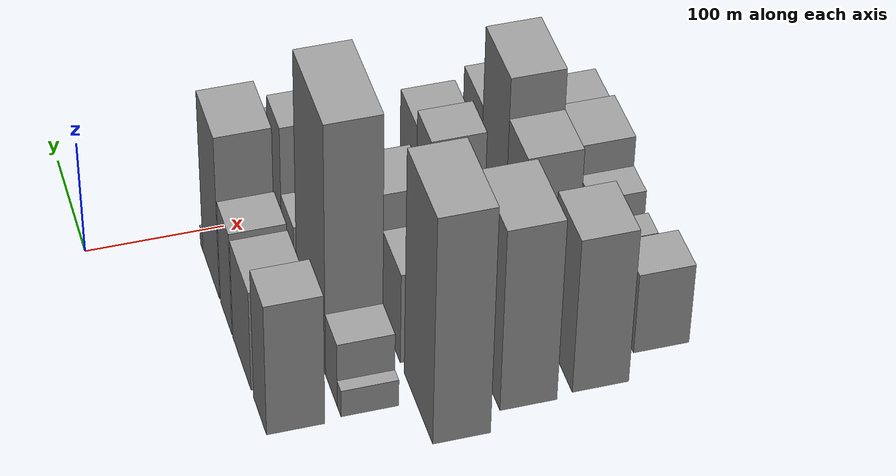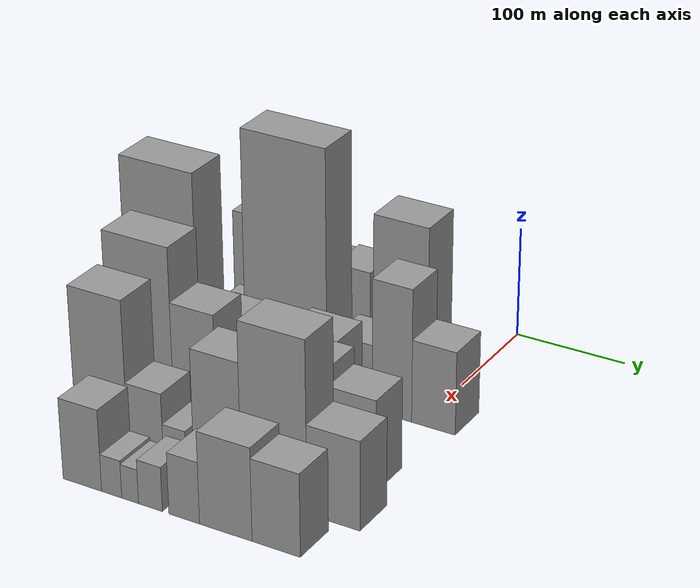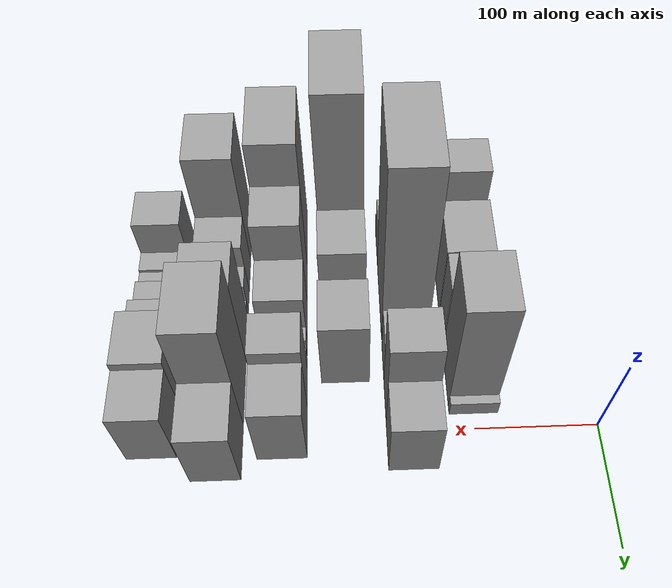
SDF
<sdf version="1.6">
 <world name="default">
  <model name="building_19">
   <static>1</static>
   <pose>100.0000 -189.8617 0 0.000000 0.000000 0.000000</pose>
   <link name="link">
    <pose>0 0 58.50 0 0 0</pose>
    <collision name="collision"><geometry><box><size>40.0000 35.9877 117.0000</size></box></geometry></collision>
    <visual name="visual">
     <cast_shadows>0</cast_shadows>
     <geometry><box><size>40.0000 35.9877 117.0000</size></box></geometry>
     <material>
      <script>
       <uri>model://grey_wall/materials/scripts</uri>
       <uri>model://grey_wall/materials/textures</uri>
       <name>vrc/grey_wall</name>
      </script>
     </material>
    </visual>
   </link>
  </model>
  <model name="building_20">
   <static>1</static>
   <pose>100.0000 -138.5964 0 0.000000 0.000000 0.000000</pose>
   <link name="link">
    <pose>0 0 45.00 0 0 0</pose>
    <collision name="collision"><geometry><box><size>40.0000 52.5428 90.0000</size></box></geometry></collision>
    <visual name="visual">
     <cast_shadows>0</cast_shadows>
     <geometry><box><size>40.0000 52.5428 90.0000</size></box></geometry>
     <material>
      <script>
       <uri>model://grey_wall/materials/scripts</uri>
       <uri>model://grey_wall/materials/textures</uri>
       <name>vrc/grey_wall</name>
      </script>
     </material>
    </visual>
   </link>
  </model>
  <model name="building_21">
   <static>1</static>
   <pose>100.0000 -92.4272 0 0.000000 0.000000 0.000000</pose>
   <link name="link">
    <pose>0 0 46.50 0 0 0</pose>
    <collision name="collision"><geometry><box><size>40.0000 33.7957 93.0000</size></box></geometry></collision>
    <visual name="visual">
     <cast_shadows>0</cast_shadows>
     <geometry><box><size>40.0000 33.7957 93.0000</size></box></geometry>
     <material>
      <script>
       <uri>model://grey_wall/materials/scripts</uri>
       <uri>model://grey_wall/materials/textures</uri>
       <name>vrc/grey_wall</name>
      </script>
     </material>
    </visual>
   </link>
  </model>
  <model name="building_22">
   <static>1</static>
   <pose>100.0000 -47.0953 0 0.000000 0.000000 0.000000</pose>
   <link name="link">
    <pose>0 0 73.50 0 0 0</pose>
    <collision name="collision"><geometry><box><size>40.0000 50.8680 147.0000</size></box></geometry></collision>
    <visual name="visual">
     <cast_shadows>0</cast_shadows>
     <geometry><box><size>40.0000 50.8680 147.0000</size></box></geometry>
     <material>
      <script>
       <uri>model://grey_wall/materials/scripts</uri>
       <uri>model://grey_wall/materials/textures</uri>
       <name>vrc/grey_wall</name>
      </script>
     </material>
    </visual>
   </link>
  </model>
  <model name="building_23">
   <static>1</static>
   <pose>100.0000 -17.7952 0 0.000000 0.000000 0.000000</pose>
   <link name="link">
    <pose>0 0 9.00 0 0 0</pose>
    <collision name="collision"><geometry><box><size>40.0000 7.7321 18.0000</size></box></geometry></collision>
    <visual name="visual">
     <cast_shadows>0</cast_shadows>
     <geometry><box><size>40.0000 7.7321 18.0000</size></box></geometry>
     <material>
      <script>
       <uri>model://grey_wall/materials/scripts</uri>
       <uri>model://grey_wall/materials/textures</uri>
       <name>vrc/grey_wall</name>
      </script>
     </material>
    </visual>
   </link>
  </model>
  <model name="building_62">
   <static>1</static>
   <pose>152.0000 -199.5590 0 0.000000 0.000000 0.000000</pose>
   <link name="link">
    <pose>0 0 12.00 0 0 0</pose>
    <collision name="collision"><geometry><box><size>40.0000 10.1499 24.0000</size></box></geometry></collision>
    <visual name="visual">
     <cast_shadows>0</cast_shadows>
     <geometry><box><size>40.0000 10.1499 24.0000</size></box></geometry>
     <material>
      <script>
       <uri>model://grey_wall/materials/scripts</uri>
       <uri>model://grey_wall/materials/textures</uri>
       <name>vrc/grey_wall</name>
      </script>
     </material>
    </visual>
   </link>
  </model>
  <model name="building_63">
   <static>1</static>
   <pose>152.0000 -179.2771 0 0.000000 0.000000 0.000000</pose>
   <link name="link">
    <pose>0 0 28.50 0 0 0</pose>
    <collision name="collision"><geometry><box><size>40.0000 30.4139 57.0000</size></box></geometry></collision>
    <visual name="visual">
     <cast_shadows>0</cast_shadows>
     <geometry><box><size>40.0000 30.4139 57.0000</size></box></geometry>
     <material>
      <script>
       <uri>model://grey_wall/materials/scripts</uri>
       <uri>model://grey_wall/materials/textures</uri>
       <name>vrc/grey_wall</name>
      </script>
     </material>
    </visual>
   </link>
  </model>
  <model name="building_64">
   <static>1</static>
   <pose>152.0000 -125.0504 0 0.000000 0.000000 0.000000</pose>
   <link name="link">
    <pose>0 0 111.00 0 0 0</pose>
    <collision name="collision"><geometry><box><size>40.0000 78.0395 222.0000</size></box></geometry></collision>
    <visual name="visual">
     <cast_shadows>0</cast_shadows>
     <geometry><box><size>40.0000 78.0395 222.0000</size></box></geometry>
     <material>
      <script>
       <uri>model://grey_wall/materials/scripts</uri>
       <uri>model://grey_wall/materials/textures</uri>
       <name>vrc/grey_wall</name>
      </script>
     </material>
    </visual>
   </link>
  </model>
  <model name="building_65">
   <static>1</static>
   <pose>152.0000 -61.3238 0 0.000000 0.000000 0.000000</pose>
   <link name="link">
    <pose>0 0 30.00 0 0 0</pose>
    <collision name="collision"><geometry><box><size>40.0000 35.4136 60.0000</size></box></geometry></collision>
    <visual name="visual">
     <cast_shadows>0</cast_shadows>
     <geometry><box><size>40.0000 35.4136 60.0000</size></box></geometry>
     <material>
      <script>
       <uri>model://grey_wall/materials/scripts</uri>
       <uri>model://grey_wall/materials/textures</uri>
       <name>vrc/grey_wall</name>
      </script>
     </material>
    </visual>
   </link>
  </model>
  <model name="building_66">
   <static>1</static>
   <pose>152.0000 -25.4433 0 0.000000 0.000000 0.000000</pose>
   <link name="link">
    <pose>0 0 60.00 0 0 0</pose>
    <collision name="collision"><geometry><box><size>40.0000 36.3476 120.0000</size></box></geometry></collision>
    <visual name="visual">
     <cast_shadows>0</cast_shadows>
     <geometry><box><size>40.0000 36.3476 120.0000</size></box></geometry>
     <material>
      <script>
       <uri>model://grey_wall/materials/scripts</uri>
       <uri>model://grey_wall/materials/textures</uri>
       <name>vrc/grey_wall</name>
      </script>
     </material>
    </visual>
   </link>
  </model>
  <model name="building_67">
   <static>1</static>
   <pose>152.0000 12.5162 0 0.000000 0.000000 0.000000</pose>
   <link name="link">
    <pose>0 0 37.50 0 0 0</pose>
    <collision name="collision"><geometry><box><size>40.0000 39.5713 75.0000</size></box></geometry></collision>
    <visual name="visual">
     <cast_shadows>0</cast_shadows>
     <geometry><box><size>40.0000 39.5713 75.0000</size></box></geometry>
     <material>
      <script>
       <uri>model://grey_wall/materials/scripts</uri>
       <uri>model://grey_wall/materials/textures</uri>
       <name>vrc/grey_wall</name>
      </script>
     </material>
    </visual>
   </link>
  </model>
  <model name="building_110">
   <static>1</static>
   <pose>204.0000 -210.2616 0 0.000000 0.000000 0.000000</pose>
   <link name="link">
    <pose>0 0 100.50 0 0 0</pose>
    <collision name="collision"><geometry><box><size>40.0000 69.0849 201.0000</size></box></geometry></collision>
    <visual name="visual">
     <cast_shadows>0</cast_shadows>
     <geometry><box><size>40.0000 69.0849 201.0000</size></box></geometry>
     <material>
      <script>
       <uri>model://grey_wall/materials/scripts</uri>
       <uri>model://grey_wall/materials/textures</uri>
       <name>vrc/grey_wall</name>
      </script>
     </material>
    </visual>
   </link>
  </model>
  <model name="building_111">
   <static>1</static>
   <pose>204.0000 -142.9102 0 0.000000 0.000000 0.000000</pose>
   <link name="link">
    <pose>0 0 40.50 0 0 0</pose>
    <collision name="collision"><geometry><box><size>40.0000 45.6178 81.0000</size></box></geometry></collision>
    <visual name="visual">
     <cast_shadows>0</cast_shadows>
     <geometry><box><size>40.0000 45.6178 81.0000</size></box></geometry>
     <material>
      <script>
       <uri>model://grey_wall/materials/scripts</uri>
       <uri>model://grey_wall/materials/textures</uri>
       <name>vrc/grey_wall</name>
      </script>
     </material>
    </visual>
   </link>
  </model>
  <model name="building_112">
   <static>1</static>
   <pose>204.0000 -109.4882 0 0.000000 0.000000 0.000000</pose>
   <link name="link">
    <pose>0 0 19.50 0 0 0</pose>
    <collision name="collision"><geometry><box><size>40.0000 21.2263 39.0000</size></box></geometry></collision>
    <visual name="visual">
     <cast_shadows>0</cast_shadows>
     <geometry><box><size>40.0000 21.2263 39.0000</size></box></geometry>
     <material>
      <script>
       <uri>model://grey_wall/materials/scripts</uri>
       <uri>model://grey_wall/materials/textures</uri>
       <name>vrc/grey_wall</name>
      </script>
     </material>
    </visual>
   </link>
  </model>
  <model name="building_113">
   <static>1</static>
   <pose>204.0000 -68.9966 0 0.000000 0.000000 0.000000</pose>
   <link name="link">
    <pose>0 0 43.50 0 0 0</pose>
    <collision name="collision"><geometry><box><size>40.0000 45.7568 87.0000</size></box></geometry></collision>
    <visual name="visual">
     <cast_shadows>0</cast_shadows>
     <geometry><box><size>40.0000 45.7568 87.0000</size></box></geometry>
     <material>
      <script>
       <uri>model://grey_wall/materials/scripts</uri>
       <uri>model://grey_wall/materials/textures</uri>
       <name>vrc/grey_wall</name>
      </script>
     </material>
    </visual>
   </link>
  </model>
  <model name="building_151">
   <static>1</static>
   <pose>256.0000 -196.0660 0 0.000000 0.000000 0.000000</pose>
   <link name="link">
    <pose>0 0 81.00 0 0 0</pose>
    <collision name="collision"><geometry><box><size>40.0000 61.6339 162.0000</size></box></geometry></collision>
    <visual name="visual">
     <cast_shadows>0</cast_shadows>
     <geometry><box><size>40.0000 61.6339 162.0000</size></box></geometry>
     <material>
      <script>
       <uri>model://grey_wall/materials/scripts</uri>
       <uri>model://grey_wall/materials/textures</uri>
       <name>vrc/grey_wall</name>
      </script>
     </material>
    </visual>
   </link>
  </model>
  <model name="building_152">
   <static>1</static>
   <pose>256.0000 -145.1368 0 0.000000 0.000000 0.000000</pose>
   <link name="link">
    <pose>0 0 57.00 0 0 0</pose>
    <collision name="collision"><geometry><box><size>40.0000 40.2247 114.0000</size></box></geometry></collision>
    <visual name="visual">
     <cast_shadows>0</cast_shadows>
     <geometry><box><size>40.0000 40.2247 114.0000</size></box></geometry>
     <material>
      <script>
       <uri>model://grey_wall/materials/scripts</uri>
       <uri>model://grey_wall/materials/textures</uri>
       <name>vrc/grey_wall</name>
      </script>
     </material>
    </visual>
   </link>
  </model>
  <model name="building_153">
   <static>1</static>
   <pose>256.0000 -105.1034 0 0.000000 0.000000 0.000000</pose>
   <link name="link">
    <pose>0 0 34.50 0 0 0</pose>
    <collision name="collision"><geometry><box><size>40.0000 39.8420 69.0000</size></box></geometry></collision>
    <visual name="visual">
     <cast_shadows>0</cast_shadows>
     <geometry><box><size>40.0000 39.8420 69.0000</size></box></geometry>
     <material>
      <script>
       <uri>model://grey_wall/materials/scripts</uri>
       <uri>model://grey_wall/materials/textures</uri>
       <name>vrc/grey_wall</name>
      </script>
     </material>
    </visual>
   </link>
  </model>
  <model name="building_154">
   <static>1</static>
   <pose>256.0000 -78.4515 0 0.000000 0.000000 0.000000</pose>
   <link name="link">
    <pose>0 0 13.50 0 0 0</pose>
    <collision name="collision"><geometry><box><size>40.0000 13.4618 27.0000</size></box></geometry></collision>
    <visual name="visual">
     <cast_shadows>0</cast_shadows>
     <geometry><box><size>40.0000 13.4618 27.0000</size></box></geometry>
     <material>
      <script>
       <uri>model://grey_wall/materials/scripts</uri>
       <uri>model://grey_wall/materials/textures</uri>
       <name>vrc/grey_wall</name>
      </script>
     </material>
    </visual>
   </link>
  </model>
  <model name="building_155">
   <static>1</static>
   <pose>256.0000 -62.7500 0 0.000000 0.000000 0.000000</pose>
   <link name="link">
    <pose>0 0 10.50 0 0 0</pose>
    <collision name="collision"><geometry><box><size>40.0000 9.9412 21.0000</size></box></geometry></collision>
    <visual name="visual">
     <cast_shadows>0</cast_shadows>
     <geometry><box><size>40.0000 9.9412 21.0000</size></box></geometry>
     <material>
      <script>
       <uri>model://grey_wall/materials/scripts</uri>
       <uri>model://grey_wall/materials/textures</uri>
       <name>vrc/grey_wall</name>
      </script>
     </material>
    </visual>
   </link>
  </model>
  <model name="building_156">
   <static>1</static>
   <pose>256.0000 -40.3011 0 0.000000 0.000000 0.000000</pose>
   <link name="link">
    <pose>0 0 48.00 0 0 0</pose>
    <collision name="collision"><geometry><box><size>40.0000 34.9567 96.0000</size></box></geometry></collision>
    <visual name="visual">
     <cast_shadows>0</cast_shadows>
     <geometry><box><size>40.0000 34.9567 96.0000</size></box></geometry>
     <material>
      <script>
       <uri>model://grey_wall/materials/scripts</uri>
       <uri>model://grey_wall/materials/textures</uri>
       <name>vrc/grey_wall</name>
      </script>
     </material>
    </visual>
   </link>
  </model>
  <model name="building_157">
   <static>1</static>
   <pose>256.0000 -1.5483 0 0.000000 0.000000 0.000000</pose>
   <link name="link">
    <pose>0 0 40.50 0 0 0</pose>
    <collision name="collision"><geometry><box><size>40.0000 42.5487 81.0000</size></box></geometry></collision>
    <visual name="visual">
     <cast_shadows>0</cast_shadows>
     <geometry><box><size>40.0000 42.5487 81.0000</size></box></geometry>
     <material>
      <script>
       <uri>model://grey_wall/materials/scripts</uri>
       <uri>model://grey_wall/materials/textures</uri>
       <name>vrc/grey_wall</name>
      </script>
     </material>
    </visual>
   </link>
  </model>
  <model name="building_203">
   <static>1</static>
   <pose>308.0000 -198.3952 0 0.000000 0.000000 0.000000</pose>
   <link name="link">
    <pose>0 0 69.00 0 0 0</pose>
    <collision name="collision"><geometry><box><size>40.0000 49.7432 138.0000</size></box></geometry></collision>
    <visual name="visual">
     <cast_shadows>0</cast_shadows>
     <geometry><box><size>40.0000 49.7432 138.0000</size></box></geometry>
     <material>
      <script>
       <uri>model://grey_wall/materials/scripts</uri>
       <uri>model://grey_wall/materials/textures</uri>
       <name>vrc/grey_wall</name>
      </script>
     </material>
    </visual>
   </link>
  </model>
  <model name="building_204">
   <static>1</static>
   <pose>308.0000 -156.8942 0 0.000000 0.000000 0.000000</pose>
   <link name="link">
    <pose>0 0 33.00 0 0 0</pose>
    <collision name="collision"><geometry><box><size>40.0000 33.2589 66.0000</size></box></geometry></collision>
    <visual name="visual">
     <cast_shadows>0</cast_shadows>
     <geometry><box><size>40.0000 33.2589 66.0000</size></box></geometry>
     <material>
      <script>
       <uri>model://grey_wall/materials/scripts</uri>
       <uri>model://grey_wall/materials/textures</uri>
       <name>vrc/grey_wall</name>
      </script>
     </material>
    </visual>
   </link>
  </model>
  <model name="building_205">
   <static>1</static>
   <pose>308.0000 -129.6795 0 0.000000 0.000000 0.000000</pose>
   <link name="link">
    <pose>0 0 19.50 0 0 0</pose>
    <collision name="collision"><geometry><box><size>40.0000 21.1705 39.0000</size></box></geometry></collision>
    <visual name="visual">
     <cast_shadows>0</cast_shadows>
     <geometry><box><size>40.0000 21.1705 39.0000</size></box></geometry>
     <material>
      <script>
       <uri>model://grey_wall/materials/scripts</uri>
       <uri>model://grey_wall/materials/textures</uri>
       <name>vrc/grey_wall</name>
      </script>
     </material>
    </visual>
   </link>
  </model>
  <model name="building_206">
   <static>1</static>
   <pose>308.0000 -115.4622 0 0.000000 0.000000 0.000000</pose>
   <link name="link">
    <pose>0 0 9.00 0 0 0</pose>
    <collision name="collision"><geometry><box><size>40.0000 7.2640 18.0000</size></box></geometry></collision>
    <visual name="visual">
     <cast_shadows>0</cast_shadows>
     <geometry><box><size>40.0000 7.2640 18.0000</size></box></geometry>
     <material>
      <script>
       <uri>model://grey_wall/materials/scripts</uri>
       <uri>model://grey_wall/materials/textures</uri>
       <name>vrc/grey_wall</name>
      </script>
     </material>
    </visual>
   </link>
  </model>
  <model name="building_207">
   <static>1</static>
   <pose>308.0000 -90.2560 0 0.000000 0.000000 0.000000</pose>
   <link name="link">
    <pose>0 0 57.00 0 0 0</pose>
    <collision name="collision"><geometry><box><size>40.0000 43.1484 114.0000</size></box></geometry></collision>
    <visual name="visual">
     <cast_shadows>0</cast_shadows>
     <geometry><box><size>40.0000 43.1484 114.0000</size></box></geometry>
     <material>
      <script>
       <uri>model://grey_wall/materials/scripts</uri>
       <uri>model://grey_wall/materials/textures</uri>
       <name>vrc/grey_wall</name>
      </script>
     </material>
    </visual>
   </link>
  </model>
  <model name="building_208">
   <static>1</static>
   <pose>308.0000 -39.4222 0 0.000000 0.000000 0.000000</pose>
   <link name="link">
    <pose>0 0 75.00 0 0 0</pose>
    <collision name="collision"><geometry><box><size>40.0000 58.5192 150.0000</size></box></geometry></collision>
    <visual name="visual">
     <cast_shadows>0</cast_shadows>
     <geometry><box><size>40.0000 58.5192 150.0000</size></box></geometry>
     <material>
      <script>
       <uri>model://grey_wall/materials/scripts</uri>
       <uri>model://grey_wall/materials/textures</uri>
       <name>vrc/grey_wall</name>
      </script>
     </material>
    </visual>
   </link>
  </model>
  <model name="building_209">
   <static>1</static>
   <pose>308.0000 12.9727 0 0.000000 0.000000 0.000000</pose>
   <link name="link">
    <pose>0 0 39.00 0 0 0</pose>
    <collision name="collision"><geometry><box><size>40.0000 46.2706 78.0000</size></box></geometry></collision>
    <visual name="visual">
     <cast_shadows>0</cast_shadows>
     <geometry><box><size>40.0000 46.2706 78.0000</size></box></geometry>
     <material>
      <script>
       <uri>model://grey_wall/materials/scripts</uri>
       <uri>model://grey_wall/materials/textures</uri>
       <name>vrc/grey_wall</name>
      </script>
     </material>
    </visual>
   </link>
  </model>
  <model name="building_249">
   <static>1</static>
   <pose>360.0000 -180.1747 0 0.000000 0.000000 0.000000</pose>
   <link name="link">
    <pose>0 0 36.00 0 0 0</pose>
    <collision name="collision"><geometry><box><size>40.0000 36.2227 72.0000</size></box></geometry></collision>
    <visual name="visual">
     <cast_shadows>0</cast_shadows>
     <geometry><box><size>40.0000 36.2227 72.0000</size></box></geometry>
     <material>
      <script>
       <uri>model://grey_wall/materials/scripts</uri>
       <uri>model://grey_wall/materials/textures</uri>
       <name>vrc/grey_wall</name>
      </script>
     </material>
    </visual>
   </link>
  </model>
  <model name="building_250">
   <static>1</static>
   <pose>360.0000 -152.7293 0 0.000000 0.000000 0.000000</pose>
   <link name="link">
    <pose>0 0 16.50 0 0 0</pose>
    <collision name="collision"><geometry><box><size>40.0000 18.6681 33.0000</size></box></geometry></collision>
    <visual name="visual">
     <cast_shadows>0</cast_shadows>
     <geometry><box><size>40.0000 18.6681 33.0000</size></box></geometry>
     <material>
      <script>
       <uri>model://grey_wall/materials/scripts</uri>
       <uri>model://grey_wall/materials/textures</uri>
       <name>vrc/grey_wall</name>
      </script>
     </material>
    </visual>
   </link>
  </model>
  <model name="building_251">
   <static>1</static>
   <pose>360.0000 -135.6664 0 0.000000 0.000000 0.000000</pose>
   <link name="link">
    <pose>0 0 15.00 0 0 0</pose>
    <collision name="collision"><geometry><box><size>40.0000 15.4576 30.0000</size></box></geometry></collision>
    <visual name="visual">
     <cast_shadows>0</cast_shadows>
     <geometry><box><size>40.0000 15.4576 30.0000</size></box></geometry>
     <material>
      <script>
       <uri>model://grey_wall/materials/scripts</uri>
       <uri>model://grey_wall/materials/textures</uri>
       <name>vrc/grey_wall</name>
      </script>
     </material>
    </visual>
   </link>
  </model>
  <model name="building_252">
   <static>1</static>
   <pose>360.0000 -117.0274 0 0.000000 0.000000 0.000000</pose>
   <link name="link">
    <pose>0 0 19.50 0 0 0</pose>
    <collision name="collision"><geometry><box><size>40.0000 21.8205 39.0000</size></box></geometry></collision>
    <visual name="visual">
     <cast_shadows>0</cast_shadows>
     <geometry><box><size>40.0000 21.8205 39.0000</size></box></geometry>
     <material>
      <script>
       <uri>model://grey_wall/materials/scripts</uri>
       <uri>model://grey_wall/materials/textures</uri>
       <name>vrc/grey_wall</name>
      </script>
     </material>
    </visual>
   </link>
  </model>
  <model name="building_253">
   <static>1</static>
   <pose>360.0000 -86.3412 0 0.000000 0.000000 0.000000</pose>
   <link name="link">
    <pose>0 0 27.00 0 0 0</pose>
    <collision name="collision"><geometry><box><size>40.0000 27.5518 54.0000</size></box></geometry></collision>
    <visual name="visual">
     <cast_shadows>0</cast_shadows>
     <geometry><box><size>40.0000 27.5518 54.0000</size></box></geometry>
     <material>
      <script>
       <uri>model://grey_wall/materials/scripts</uri>
       <uri>model://grey_wall/materials/textures</uri>
       <name>vrc/grey_wall</name>
      </script>
     </material>
    </visual>
   </link>
  </model>
  <model name="building_254">
   <static>1</static>
   <pose>360.0000 -49.2683 0 0.000000 0.000000 0.000000</pose>
   <link name="link">
    <pose>0 0 40.50 0 0 0</pose>
    <collision name="collision"><geometry><box><size>40.0000 46.5940 81.0000</size></box></geometry></collision>
    <visual name="visual">
     <cast_shadows>0</cast_shadows>
     <geometry><box><size>40.0000 46.5940 81.0000</size></box></geometry>
     <material>
      <script>
       <uri>model://grey_wall/materials/scripts</uri>
       <uri>model://grey_wall/materials/textures</uri>
       <name>vrc/grey_wall</name>
      </script>
     </material>
    </visual>
   </link>
  </model>
  <model name="building_255">
   <static>1</static>
   <pose>360.0000 -5.0912 0 0.000000 0.000000 0.000000</pose>
   <link name="link">
    <pose>0 0 36.00 0 0 0</pose>
    <collision name="collision"><geometry><box><size>40.0000 41.7603 72.0000</size></box></geometry></collision>
    <visual name="visual">
     <cast_shadows>0</cast_shadows>
     <geometry><box><size>40.0000 41.7603 72.0000</size></box></geometry>
     <material>
      <script>
       <uri>model://grey_wall/materials/scripts</uri>
       <uri>model://grey_wall/materials/textures</uri>
       <name>vrc/grey_wall</name>
      </script>
     </material>
    </visual>
   </link>
  </model>
 </world>
</sdf>
